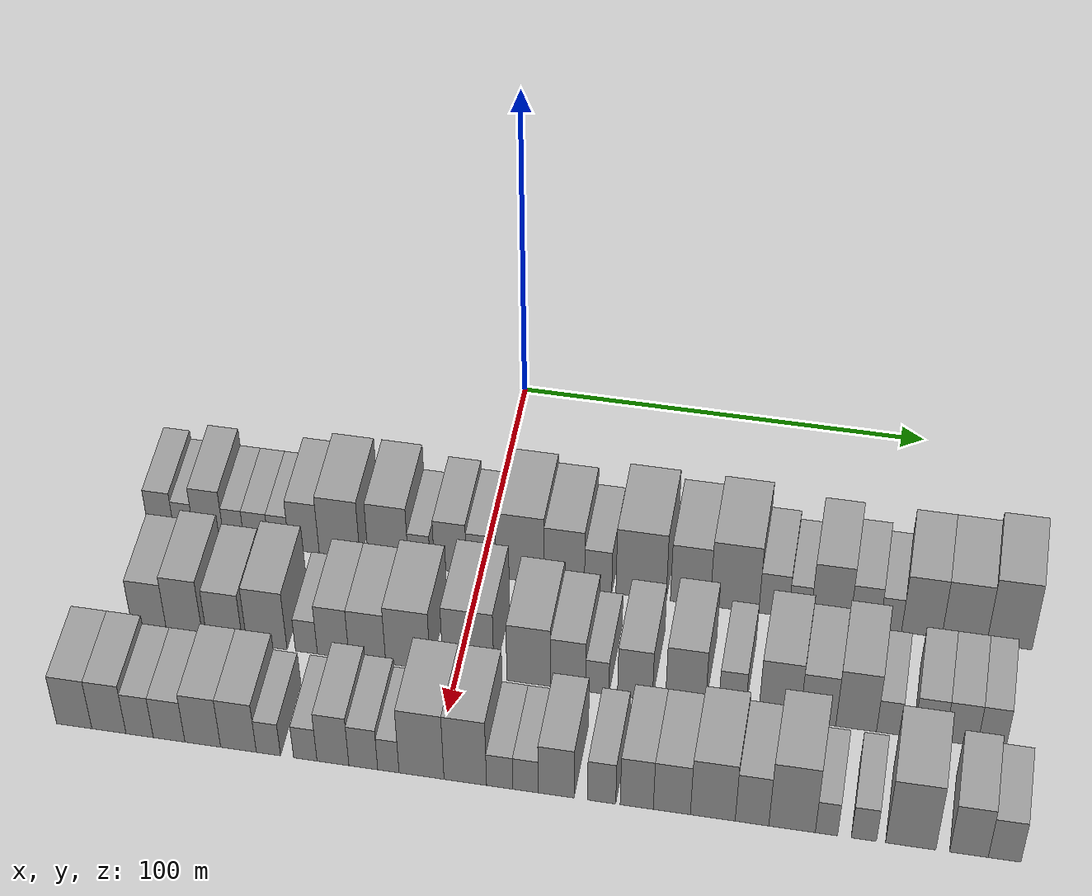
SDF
<sdf version="1.6">
 <world name="default">
  <model name="building_24">
   <static>1</static>
   <pose>50.0000 -77.7692 0 0.000000 0.000000 0.000000</pose>
   <link name="link">
    <pose>0 0 7.50 0 0 0</pose>
    <collision name="collision"><geometry><box><size>20.0000 6.3808 15.0000</size></box></geometry></collision>
    <visual name="visual">
     <cast_shadows>0</cast_shadows>
     <geometry><box><size>20.0000 6.3808 15.0000</size></box></geometry>
     <material>
      <script>
       <uri>model://grey_wall/materials/scripts</uri>
       <uri>model://grey_wall/materials/textures</uri>
       <name>vrc/grey_wall</name>
      </script>
     </material>
    </visual>
   </link>
  </model>
  <model name="building_25">
   <static>1</static>
   <pose>50.0000 -72.1484 0 0.000000 0.000000 0.000000</pose>
   <link name="link">
    <pose>0 0 6.00 0 0 0</pose>
    <collision name="collision"><geometry><box><size>20.0000 4.8608 12.0000</size></box></geometry></collision>
    <visual name="visual">
     <cast_shadows>0</cast_shadows>
     <geometry><box><size>20.0000 4.8608 12.0000</size></box></geometry>
     <material>
      <script>
       <uri>model://grey_wall/materials/scripts</uri>
       <uri>model://grey_wall/materials/textures</uri>
       <name>vrc/grey_wall</name>
      </script>
     </material>
    </visual>
   </link>
  </model>
  <model name="building_26">
   <static>1</static>
   <pose>50.0000 -66.0389 0 0.000000 0.000000 0.000000</pose>
   <link name="link">
    <pose>0 0 9.00 0 0 0</pose>
    <collision name="collision"><geometry><box><size>20.0000 7.3583 18.0000</size></box></geometry></collision>
    <visual name="visual">
     <cast_shadows>0</cast_shadows>
     <geometry><box><size>20.0000 7.3583 18.0000</size></box></geometry>
     <material>
      <script>
       <uri>model://grey_wall/materials/scripts</uri>
       <uri>model://grey_wall/materials/textures</uri>
       <name>vrc/grey_wall</name>
      </script>
     </material>
    </visual>
   </link>
  </model>
  <model name="building_27">
   <static>1</static>
   <pose>50.0000 -59.8651 0 0.000000 0.000000 0.000000</pose>
   <link name="link">
    <pose>0 0 6.00 0 0 0</pose>
    <collision name="collision"><geometry><box><size>20.0000 4.9893 12.0000</size></box></geometry></collision>
    <visual name="visual">
     <cast_shadows>0</cast_shadows>
     <geometry><box><size>20.0000 4.9893 12.0000</size></box></geometry>
     <material>
      <script>
       <uri>model://grey_wall/materials/scripts</uri>
       <uri>model://grey_wall/materials/textures</uri>
       <name>vrc/grey_wall</name>
      </script>
     </material>
    </visual>
   </link>
  </model>
  <model name="building_28">
   <static>1</static>
   <pose>50.0000 -54.3744 0 0.000000 0.000000 0.000000</pose>
   <link name="link">
    <pose>0 0 6.00 0 0 0</pose>
    <collision name="collision"><geometry><box><size>20.0000 5.9921 12.0000</size></box></geometry></collision>
    <visual name="visual">
     <cast_shadows>0</cast_shadows>
     <geometry><box><size>20.0000 5.9921 12.0000</size></box></geometry>
     <material>
      <script>
       <uri>model://grey_wall/materials/scripts</uri>
       <uri>model://grey_wall/materials/textures</uri>
       <name>vrc/grey_wall</name>
      </script>
     </material>
    </visual>
   </link>
  </model>
  <model name="building_29">
   <static>1</static>
   <pose>50.0000 -48.8814 0 0.000000 0.000000 0.000000</pose>
   <link name="link">
    <pose>0 0 6.00 0 0 0</pose>
    <collision name="collision"><geometry><box><size>20.0000 4.9938 12.0000</size></box></geometry></collision>
    <visual name="visual">
     <cast_shadows>0</cast_shadows>
     <geometry><box><size>20.0000 4.9938 12.0000</size></box></geometry>
     <material>
      <script>
       <uri>model://grey_wall/materials/scripts</uri>
       <uri>model://grey_wall/materials/textures</uri>
       <name>vrc/grey_wall</name>
      </script>
     </material>
    </visual>
   </link>
  </model>
  <model name="building_30">
   <static>1</static>
   <pose>50.0000 -42.7141 0 0.000000 0.000000 0.000000</pose>
   <link name="link">
    <pose>0 0 9.00 0 0 0</pose>
    <collision name="collision"><geometry><box><size>20.0000 7.3408 18.0000</size></box></geometry></collision>
    <visual name="visual">
     <cast_shadows>0</cast_shadows>
     <geometry><box><size>20.0000 7.3408 18.0000</size></box></geometry>
     <material>
      <script>
       <uri>model://grey_wall/materials/scripts</uri>
       <uri>model://grey_wall/materials/textures</uri>
       <name>vrc/grey_wall</name>
      </script>
     </material>
    </visual>
   </link>
  </model>
  <model name="building_31">
   <static>1</static>
   <pose>50.0000 -34.0689 0 0.000000 0.000000 0.000000</pose>
   <link name="link">
    <pose>0 0 10.50 0 0 0</pose>
    <collision name="collision"><geometry><box><size>20.0000 9.9496 21.0000</size></box></geometry></collision>
    <visual name="visual">
     <cast_shadows>0</cast_shadows>
     <geometry><box><size>20.0000 9.9496 21.0000</size></box></geometry>
     <material>
      <script>
       <uri>model://grey_wall/materials/scripts</uri>
       <uri>model://grey_wall/materials/textures</uri>
       <name>vrc/grey_wall</name>
      </script>
     </material>
    </visual>
   </link>
  </model>
  <model name="building_32">
   <static>1</static>
   <pose>50.0000 -22.2317 0 0.000000 0.000000 0.000000</pose>
   <link name="link">
    <pose>0 0 10.50 0 0 0</pose>
    <collision name="collision"><geometry><box><size>20.0000 9.7248 21.0000</size></box></geometry></collision>
    <visual name="visual">
     <cast_shadows>0</cast_shadows>
     <geometry><box><size>20.0000 9.7248 21.0000</size></box></geometry>
     <material>
      <script>
       <uri>model://grey_wall/materials/scripts</uri>
       <uri>model://grey_wall/materials/textures</uri>
       <name>vrc/grey_wall</name>
      </script>
     </material>
    </visual>
   </link>
  </model>
  <model name="building_33">
   <static>1</static>
   <pose>50.0000 -14.7225 0 0.000000 0.000000 0.000000</pose>
   <link name="link">
    <pose>0 0 6.00 0 0 0</pose>
    <collision name="collision"><geometry><box><size>20.0000 5.2937 12.0000</size></box></geometry></collision>
    <visual name="visual">
     <cast_shadows>0</cast_shadows>
     <geometry><box><size>20.0000 5.2937 12.0000</size></box></geometry>
     <material>
      <script>
       <uri>model://grey_wall/materials/scripts</uri>
       <uri>model://grey_wall/materials/textures</uri>
       <name>vrc/grey_wall</name>
      </script>
     </material>
    </visual>
   </link>
  </model>
  <model name="building_34">
   <static>1</static>
   <pose>50.0000 -7.1864 0 0.000000 0.000000 0.000000</pose>
   <link name="link">
    <pose>0 0 9.00 0 0 0</pose>
    <collision name="collision"><geometry><box><size>20.0000 7.7785 18.0000</size></box></geometry></collision>
    <visual name="visual">
     <cast_shadows>0</cast_shadows>
     <geometry><box><size>20.0000 7.7785 18.0000</size></box></geometry>
     <material>
      <script>
       <uri>model://grey_wall/materials/scripts</uri>
       <uri>model://grey_wall/materials/textures</uri>
       <name>vrc/grey_wall</name>
      </script>
     </material>
    </visual>
   </link>
  </model>
  <model name="building_35">
   <static>1</static>
   <pose>50.0000 0.2506 0 0.000000 0.000000 0.000000</pose>
   <link name="link">
    <pose>0 0 7.50 0 0 0</pose>
    <collision name="collision"><geometry><box><size>20.0000 7.0955 15.0000</size></box></geometry></collision>
    <visual name="visual">
     <cast_shadows>0</cast_shadows>
     <geometry><box><size>20.0000 7.0955 15.0000</size></box></geometry>
     <material>
      <script>
       <uri>model://grey_wall/materials/scripts</uri>
       <uri>model://grey_wall/materials/textures</uri>
       <name>vrc/grey_wall</name>
      </script>
     </material>
    </visual>
   </link>
  </model>
  <model name="building_36">
   <static>1</static>
   <pose>50.0000 9.5792 0 0.000000 0.000000 0.000000</pose>
   <link name="link">
    <pose>0 0 12.00 0 0 0</pose>
    <collision name="collision"><geometry><box><size>20.0000 11.5617 24.0000</size></box></geometry></collision>
    <visual name="visual">
     <cast_shadows>0</cast_shadows>
     <geometry><box><size>20.0000 11.5617 24.0000</size></box></geometry>
     <material>
      <script>
       <uri>model://grey_wall/materials/scripts</uri>
       <uri>model://grey_wall/materials/textures</uri>
       <name>vrc/grey_wall</name>
      </script>
     </material>
    </visual>
   </link>
  </model>
  <model name="building_37">
   <static>1</static>
   <pose>50.0000 20.1480 0 0.000000 0.000000 0.000000</pose>
   <link name="link">
    <pose>0 0 10.50 0 0 0</pose>
    <collision name="collision"><geometry><box><size>20.0000 9.5758 21.0000</size></box></geometry></collision>
    <visual name="visual">
     <cast_shadows>0</cast_shadows>
     <geometry><box><size>20.0000 9.5758 21.0000</size></box></geometry>
     <material>
      <script>
       <uri>model://grey_wall/materials/scripts</uri>
       <uri>model://grey_wall/materials/textures</uri>
       <name>vrc/grey_wall</name>
      </script>
     </material>
    </visual>
   </link>
  </model>
  <model name="building_38">
   <static>1</static>
   <pose>50.0000 28.1841 0 0.000000 0.000000 0.000000</pose>
   <link name="link">
    <pose>0 0 7.50 0 0 0</pose>
    <collision name="collision"><geometry><box><size>20.0000 6.4964 15.0000</size></box></geometry></collision>
    <visual name="visual">
     <cast_shadows>0</cast_shadows>
     <geometry><box><size>20.0000 6.4964 15.0000</size></box></geometry>
     <material>
      <script>
       <uri>model://grey_wall/materials/scripts</uri>
       <uri>model://grey_wall/materials/textures</uri>
       <name>vrc/grey_wall</name>
      </script>
     </material>
    </visual>
   </link>
  </model>
  <model name="building_39">
   <static>1</static>
   <pose>50.0000 38.3976 0 0.000000 0.000000 0.000000</pose>
   <link name="link">
    <pose>0 0 12.00 0 0 0</pose>
    <collision name="collision"><geometry><box><size>20.0000 11.9307 24.0000</size></box></geometry></collision>
    <visual name="visual">
     <cast_shadows>0</cast_shadows>
     <geometry><box><size>20.0000 11.9307 24.0000</size></box></geometry>
     <material>
      <script>
       <uri>model://grey_wall/materials/scripts</uri>
       <uri>model://grey_wall/materials/textures</uri>
       <name>vrc/grey_wall</name>
      </script>
     </material>
    </visual>
   </link>
  </model>
  <model name="building_40">
   <static>1</static>
   <pose>50.0000 50.0715 0 0.000000 0.000000 0.000000</pose>
   <link name="link">
    <pose>0 0 10.50 0 0 0</pose>
    <collision name="collision"><geometry><box><size>20.0000 9.4170 21.0000</size></box></geometry></collision>
    <visual name="visual">
     <cast_shadows>0</cast_shadows>
     <geometry><box><size>20.0000 9.4170 21.0000</size></box></geometry>
     <material>
      <script>
       <uri>model://grey_wall/materials/scripts</uri>
       <uri>model://grey_wall/materials/textures</uri>
       <name>vrc/grey_wall</name>
      </script>
     </material>
    </visual>
   </link>
  </model>
  <model name="building_41">
   <static>1</static>
   <pose>50.0000 60.5149 0 0.000000 0.000000 0.000000</pose>
   <link name="link">
    <pose>0 0 12.00 0 0 0</pose>
    <collision name="collision"><geometry><box><size>20.0000 11.4699 24.0000</size></box></geometry></collision>
    <visual name="visual">
     <cast_shadows>0</cast_shadows>
     <geometry><box><size>20.0000 11.4699 24.0000</size></box></geometry>
     <material>
      <script>
       <uri>model://grey_wall/materials/scripts</uri>
       <uri>model://grey_wall/materials/textures</uri>
       <name>vrc/grey_wall</name>
      </script>
     </material>
    </visual>
   </link>
  </model>
  <model name="building_42">
   <static>1</static>
   <pose>50.0000 69.7422 0 0.000000 0.000000 0.000000</pose>
   <link name="link">
    <pose>0 0 7.50 0 0 0</pose>
    <collision name="collision"><geometry><box><size>20.0000 6.9846 15.0000</size></box></geometry></collision>
    <visual name="visual">
     <cast_shadows>0</cast_shadows>
     <geometry><box><size>20.0000 6.9846 15.0000</size></box></geometry>
     <material>
      <script>
       <uri>model://grey_wall/materials/scripts</uri>
       <uri>model://grey_wall/materials/textures</uri>
       <name>vrc/grey_wall</name>
      </script>
     </material>
    </visual>
   </link>
  </model>
  <model name="building_43">
   <static>1</static>
   <pose>50.0000 75.8215 0 0.000000 0.000000 0.000000</pose>
   <link name="link">
    <pose>0 0 6.00 0 0 0</pose>
    <collision name="collision"><geometry><box><size>20.0000 5.1740 12.0000</size></box></geometry></collision>
    <visual name="visual">
     <cast_shadows>0</cast_shadows>
     <geometry><box><size>20.0000 5.1740 12.0000</size></box></geometry>
     <material>
      <script>
       <uri>model://grey_wall/materials/scripts</uri>
       <uri>model://grey_wall/materials/textures</uri>
       <name>vrc/grey_wall</name>
      </script>
     </material>
    </visual>
   </link>
  </model>
  <model name="building_44">
   <static>1</static>
   <pose>50.0000 83.0262 0 0.000000 0.000000 0.000000</pose>
   <link name="link">
    <pose>0 0 10.50 0 0 0</pose>
    <collision name="collision"><geometry><box><size>20.0000 9.2354 21.0000</size></box></geometry></collision>
    <visual name="visual">
     <cast_shadows>0</cast_shadows>
     <geometry><box><size>20.0000 9.2354 21.0000</size></box></geometry>
     <material>
      <script>
       <uri>model://grey_wall/materials/scripts</uri>
       <uri>model://grey_wall/materials/textures</uri>
       <name>vrc/grey_wall</name>
      </script>
     </material>
    </visual>
   </link>
  </model>
  <model name="building_45">
   <static>1</static>
   <pose>50.0000 91.1143 0 0.000000 0.000000 0.000000</pose>
   <link name="link">
    <pose>0 0 7.50 0 0 0</pose>
    <collision name="collision"><geometry><box><size>20.0000 6.9408 15.0000</size></box></geometry></collision>
    <visual name="visual">
     <cast_shadows>0</cast_shadows>
     <geometry><box><size>20.0000 6.9408 15.0000</size></box></geometry>
     <material>
      <script>
       <uri>model://grey_wall/materials/scripts</uri>
       <uri>model://grey_wall/materials/textures</uri>
       <name>vrc/grey_wall</name>
      </script>
     </material>
    </visual>
   </link>
  </model>
  <model name="building_46">
   <static>1</static>
   <pose>50.0000 97.1220 0 0.000000 0.000000 0.000000</pose>
   <link name="link">
    <pose>0 0 6.00 0 0 0</pose>
    <collision name="collision"><geometry><box><size>20.0000 5.0745 12.0000</size></box></geometry></collision>
    <visual name="visual">
     <cast_shadows>0</cast_shadows>
     <geometry><box><size>20.0000 5.0745 12.0000</size></box></geometry>
     <material>
      <script>
       <uri>model://grey_wall/materials/scripts</uri>
       <uri>model://grey_wall/materials/textures</uri>
       <name>vrc/grey_wall</name>
      </script>
     </material>
    </visual>
   </link>
  </model>
  <model name="building_47">
   <static>1</static>
   <pose>50.0000 104.3414 0 0.000000 0.000000 0.000000</pose>
   <link name="link">
    <pose>0 0 10.50 0 0 0</pose>
    <collision name="collision"><geometry><box><size>20.0000 9.3645 21.0000</size></box></geometry></collision>
    <visual name="visual">
     <cast_shadows>0</cast_shadows>
     <geometry><box><size>20.0000 9.3645 21.0000</size></box></geometry>
     <material>
      <script>
       <uri>model://grey_wall/materials/scripts</uri>
       <uri>model://grey_wall/materials/textures</uri>
       <name>vrc/grey_wall</name>
      </script>
     </material>
    </visual>
   </link>
  </model>
  <model name="building_48">
   <static>1</static>
   <pose>50.0000 114.2384 0 0.000000 0.000000 0.000000</pose>
   <link name="link">
    <pose>0 0 10.50 0 0 0</pose>
    <collision name="collision"><geometry><box><size>20.0000 10.4295 21.0000</size></box></geometry></collision>
    <visual name="visual">
     <cast_shadows>0</cast_shadows>
     <geometry><box><size>20.0000 10.4295 21.0000</size></box></geometry>
     <material>
      <script>
       <uri>model://grey_wall/materials/scripts</uri>
       <uri>model://grey_wall/materials/textures</uri>
       <name>vrc/grey_wall</name>
      </script>
     </material>
    </visual>
   </link>
  </model>
  <model name="building_49">
   <static>1</static>
   <pose>50.0000 124.6758 0 0.000000 0.000000 0.000000</pose>
   <link name="link">
    <pose>0 0 12.00 0 0 0</pose>
    <collision name="collision"><geometry><box><size>20.0000 10.4453 24.0000</size></box></geometry></collision>
    <visual name="visual">
     <cast_shadows>0</cast_shadows>
     <geometry><box><size>20.0000 10.4453 24.0000</size></box></geometry>
     <material>
      <script>
       <uri>model://grey_wall/materials/scripts</uri>
       <uri>model://grey_wall/materials/textures</uri>
       <name>vrc/grey_wall</name>
      </script>
     </material>
    </visual>
   </link>
  </model>
  <model name="building_106">
   <static>1</static>
   <pose>79.0000 -72.8455 0 0.000000 0.000000 0.000000</pose>
   <link name="link">
    <pose>0 0 9.00 0 0 0</pose>
    <collision name="collision"><geometry><box><size>20.0000 8.3248 18.0000</size></box></geometry></collision>
    <visual name="visual">
     <cast_shadows>0</cast_shadows>
     <geometry><box><size>20.0000 8.3248 18.0000</size></box></geometry>
     <material>
      <script>
       <uri>model://grey_wall/materials/scripts</uri>
       <uri>model://grey_wall/materials/textures</uri>
       <name>vrc/grey_wall</name>
      </script>
     </material>
    </visual>
   </link>
  </model>
  <model name="building_107">
   <static>1</static>
   <pose>79.0000 -64.3880 0 0.000000 0.000000 0.000000</pose>
   <link name="link">
    <pose>0 0 10.50 0 0 0</pose>
    <collision name="collision"><geometry><box><size>20.0000 8.5904 21.0000</size></box></geometry></collision>
    <visual name="visual">
     <cast_shadows>0</cast_shadows>
     <geometry><box><size>20.0000 8.5904 21.0000</size></box></geometry>
     <material>
      <script>
       <uri>model://grey_wall/materials/scripts</uri>
       <uri>model://grey_wall/materials/textures</uri>
       <name>vrc/grey_wall</name>
      </script>
     </material>
    </visual>
   </link>
  </model>
  <model name="building_108">
   <static>1</static>
   <pose>79.0000 -54.8262 0 0.000000 0.000000 0.000000</pose>
   <link name="link">
    <pose>0 0 9.00 0 0 0</pose>
    <collision name="collision"><geometry><box><size>20.0000 8.5331 18.0000</size></box></geometry></collision>
    <visual name="visual">
     <cast_shadows>0</cast_shadows>
     <geometry><box><size>20.0000 8.5331 18.0000</size></box></geometry>
     <material>
      <script>
       <uri>model://grey_wall/materials/scripts</uri>
       <uri>model://grey_wall/materials/textures</uri>
       <name>vrc/grey_wall</name>
      </script>
     </material>
    </visual>
   </link>
  </model>
  <model name="building_109">
   <static>1</static>
   <pose>79.0000 -44.7989 0 0.000000 0.000000 0.000000</pose>
   <link name="link">
    <pose>0 0 10.50 0 0 0</pose>
    <collision name="collision"><geometry><box><size>20.0000 9.5216 21.0000</size></box></geometry></collision>
    <visual name="visual">
     <cast_shadows>0</cast_shadows>
     <geometry><box><size>20.0000 9.5216 21.0000</size></box></geometry>
     <material>
      <script>
       <uri>model://grey_wall/materials/scripts</uri>
       <uri>model://grey_wall/materials/textures</uri>
       <name>vrc/grey_wall</name>
      </script>
     </material>
    </visual>
   </link>
  </model>
  <model name="building_110">
   <static>1</static>
   <pose>79.0000 -35.4423 0 0.000000 0.000000 0.000000</pose>
   <link name="link">
    <pose>0 0 6.00 0 0 0</pose>
    <collision name="collision"><geometry><box><size>20.0000 5.1914 12.0000</size></box></geometry></collision>
    <visual name="visual">
     <cast_shadows>0</cast_shadows>
     <geometry><box><size>20.0000 5.1914 12.0000</size></box></geometry>
     <material>
      <script>
       <uri>model://grey_wall/materials/scripts</uri>
       <uri>model://grey_wall/materials/textures</uri>
       <name>vrc/grey_wall</name>
      </script>
     </material>
    </visual>
   </link>
  </model>
  <model name="building_111">
   <static>1</static>
   <pose>79.0000 -29.1045 0 0.000000 0.000000 0.000000</pose>
   <link name="link">
    <pose>0 0 9.00 0 0 0</pose>
    <collision name="collision"><geometry><box><size>20.0000 7.4842 18.0000</size></box></geometry></collision>
    <visual name="visual">
     <cast_shadows>0</cast_shadows>
     <geometry><box><size>20.0000 7.4842 18.0000</size></box></geometry>
     <material>
      <script>
       <uri>model://grey_wall/materials/scripts</uri>
       <uri>model://grey_wall/materials/textures</uri>
       <name>vrc/grey_wall</name>
      </script>
     </material>
    </visual>
   </link>
  </model>
  <model name="building_112">
   <static>1</static>
   <pose>79.0000 -21.0315 0 0.000000 0.000000 0.000000</pose>
   <link name="link">
    <pose>0 0 9.00 0 0 0</pose>
    <collision name="collision"><geometry><box><size>20.0000 8.6617 18.0000</size></box></geometry></collision>
    <visual name="visual">
     <cast_shadows>0</cast_shadows>
     <geometry><box><size>20.0000 8.6617 18.0000</size></box></geometry>
     <material>
      <script>
       <uri>model://grey_wall/materials/scripts</uri>
       <uri>model://grey_wall/materials/textures</uri>
       <name>vrc/grey_wall</name>
      </script>
     </material>
    </visual>
   </link>
  </model>
  <model name="building_113">
   <static>1</static>
   <pose>79.0000 -11.4626 0 0.000000 0.000000 0.000000</pose>
   <link name="link">
    <pose>0 0 10.50 0 0 0</pose>
    <collision name="collision"><geometry><box><size>20.0000 10.4762 21.0000</size></box></geometry></collision>
    <visual name="visual">
     <cast_shadows>0</cast_shadows>
     <geometry><box><size>20.0000 10.4762 21.0000</size></box></geometry>
     <material>
      <script>
       <uri>model://grey_wall/materials/scripts</uri>
       <uri>model://grey_wall/materials/textures</uri>
       <name>vrc/grey_wall</name>
      </script>
     </material>
    </visual>
   </link>
  </model>
  <model name="building_114">
   <static>1</static>
   <pose>79.0000 2.7333 0 0.000000 0.000000 0.000000</pose>
   <link name="link">
    <pose>0 0 12.00 0 0 0</pose>
    <collision name="collision"><geometry><box><size>20.0000 11.9155 24.0000</size></box></geometry></collision>
    <visual name="visual">
     <cast_shadows>0</cast_shadows>
     <geometry><box><size>20.0000 11.9155 24.0000</size></box></geometry>
     <material>
      <script>
       <uri>model://grey_wall/materials/scripts</uri>
       <uri>model://grey_wall/materials/textures</uri>
       <name>vrc/grey_wall</name>
      </script>
     </material>
    </visual>
   </link>
  </model>
  <model name="building_115">
   <static>1</static>
   <pose>79.0000 16.7274 0 0.000000 0.000000 0.000000</pose>
   <link name="link">
    <pose>0 0 10.50 0 0 0</pose>
    <collision name="collision"><geometry><box><size>20.0000 10.0727 21.0000</size></box></geometry></collision>
    <visual name="visual">
     <cast_shadows>0</cast_shadows>
     <geometry><box><size>20.0000 10.0727 21.0000</size></box></geometry>
     <material>
      <script>
       <uri>model://grey_wall/materials/scripts</uri>
       <uri>model://grey_wall/materials/textures</uri>
       <name>vrc/grey_wall</name>
      </script>
     </material>
    </visual>
   </link>
  </model>
  <model name="building_116">
   <static>1</static>
   <pose>79.0000 25.8752 0 0.000000 0.000000 0.000000</pose>
   <link name="link">
    <pose>0 0 9.00 0 0 0</pose>
    <collision name="collision"><geometry><box><size>20.0000 8.2229 18.0000</size></box></geometry></collision>
    <visual name="visual">
     <cast_shadows>0</cast_shadows>
     <geometry><box><size>20.0000 8.2229 18.0000</size></box></geometry>
     <material>
      <script>
       <uri>model://grey_wall/materials/scripts</uri>
       <uri>model://grey_wall/materials/textures</uri>
       <name>vrc/grey_wall</name>
      </script>
     </material>
    </visual>
   </link>
  </model>
  <model name="building_117">
   <static>1</static>
   <pose>79.0000 32.6592 0 0.000000 0.000000 0.000000</pose>
   <link name="link">
    <pose>0 0 6.00 0 0 0</pose>
    <collision name="collision"><geometry><box><size>20.0000 5.3452 12.0000</size></box></geometry></collision>
    <visual name="visual">
     <cast_shadows>0</cast_shadows>
     <geometry><box><size>20.0000 5.3452 12.0000</size></box></geometry>
     <material>
      <script>
       <uri>model://grey_wall/materials/scripts</uri>
       <uri>model://grey_wall/materials/textures</uri>
       <name>vrc/grey_wall</name>
      </script>
     </material>
    </visual>
   </link>
  </model>
  <model name="building_118">
   <static>1</static>
   <pose>79.0000 41.3565 0 0.000000 0.000000 0.000000</pose>
   <link name="link">
    <pose>0 0 9.00 0 0 0</pose>
    <collision name="collision"><geometry><box><size>20.0000 8.0492 18.0000</size></box></geometry></collision>
    <visual name="visual">
     <cast_shadows>0</cast_shadows>
     <geometry><box><size>20.0000 8.0492 18.0000</size></box></geometry>
     <material>
      <script>
       <uri>model://grey_wall/materials/scripts</uri>
       <uri>model://grey_wall/materials/textures</uri>
       <name>vrc/grey_wall</name>
      </script>
     </material>
    </visual>
   </link>
  </model>
  <model name="building_119">
   <static>1</static>
   <pose>79.0000 52.9645 0 0.000000 0.000000 0.000000</pose>
   <link name="link">
    <pose>0 0 10.50 0 0 0</pose>
    <collision name="collision"><geometry><box><size>20.0000 9.1668 21.0000</size></box></geometry></collision>
    <visual name="visual">
     <cast_shadows>0</cast_shadows>
     <geometry><box><size>20.0000 9.1668 21.0000</size></box></geometry>
     <material>
      <script>
       <uri>model://grey_wall/materials/scripts</uri>
       <uri>model://grey_wall/materials/textures</uri>
       <name>vrc/grey_wall</name>
      </script>
     </material>
    </visual>
   </link>
  </model>
  <model name="building_120">
   <static>1</static>
   <pose>79.0000 63.6351 0 0.000000 0.000000 0.000000</pose>
   <link name="link">
    <pose>0 0 7.50 0 0 0</pose>
    <collision name="collision"><geometry><box><size>20.0000 6.1743 15.0000</size></box></geometry></collision>
    <visual name="visual">
     <cast_shadows>0</cast_shadows>
     <geometry><box><size>20.0000 6.1743 15.0000</size></box></geometry>
     <material>
      <script>
       <uri>model://grey_wall/materials/scripts</uri>
       <uri>model://grey_wall/materials/textures</uri>
       <name>vrc/grey_wall</name>
      </script>
     </material>
    </visual>
   </link>
  </model>
  <model name="building_121">
   <static>1</static>
   <pose>79.0000 74.4459 0 0.000000 0.000000 0.000000</pose>
   <link name="link">
    <pose>0 0 10.50 0 0 0</pose>
    <collision name="collision"><geometry><box><size>20.0000 9.4473 21.0000</size></box></geometry></collision>
    <visual name="visual">
     <cast_shadows>0</cast_shadows>
     <geometry><box><size>20.0000 9.4473 21.0000</size></box></geometry>
     <material>
      <script>
       <uri>model://grey_wall/materials/scripts</uri>
       <uri>model://grey_wall/materials/textures</uri>
       <name>vrc/grey_wall</name>
      </script>
     </material>
    </visual>
   </link>
  </model>
  <model name="building_122">
   <static>1</static>
   <pose>79.0000 83.2457 0 0.000000 0.000000 0.000000</pose>
   <link name="link">
    <pose>0 0 9.00 0 0 0</pose>
    <collision name="collision"><geometry><box><size>20.0000 8.1524 18.0000</size></box></geometry></collision>
    <visual name="visual">
     <cast_shadows>0</cast_shadows>
     <geometry><box><size>20.0000 8.1524 18.0000</size></box></geometry>
     <material>
      <script>
       <uri>model://grey_wall/materials/scripts</uri>
       <uri>model://grey_wall/materials/textures</uri>
       <name>vrc/grey_wall</name>
      </script>
     </material>
    </visual>
   </link>
  </model>
  <model name="building_123">
   <static>1</static>
   <pose>79.0000 91.9345 0 0.000000 0.000000 0.000000</pose>
   <link name="link">
    <pose>0 0 10.50 0 0 0</pose>
    <collision name="collision"><geometry><box><size>20.0000 9.2253 21.0000</size></box></geometry></collision>
    <visual name="visual">
     <cast_shadows>0</cast_shadows>
     <geometry><box><size>20.0000 9.2253 21.0000</size></box></geometry>
     <material>
      <script>
       <uri>model://grey_wall/materials/scripts</uri>
       <uri>model://grey_wall/materials/textures</uri>
       <name>vrc/grey_wall</name>
      </script>
     </material>
    </visual>
   </link>
  </model>
  <model name="building_124">
   <static>1</static>
   <pose>79.0000 99.2142 0 0.000000 0.000000 0.000000</pose>
   <link name="link">
    <pose>0 0 6.00 0 0 0</pose>
    <collision name="collision"><geometry><box><size>20.0000 5.3341 12.0000</size></box></geometry></collision>
    <visual name="visual">
     <cast_shadows>0</cast_shadows>
     <geometry><box><size>20.0000 5.3341 12.0000</size></box></geometry>
     <material>
      <script>
       <uri>model://grey_wall/materials/scripts</uri>
       <uri>model://grey_wall/materials/textures</uri>
       <name>vrc/grey_wall</name>
      </script>
     </material>
    </visual>
   </link>
  </model>
  <model name="building_125">
   <static>1</static>
   <pose>79.0000 108.4288 0 0.000000 0.000000 0.000000</pose>
   <link name="link">
    <pose>0 0 7.50 0 0 0</pose>
    <collision name="collision"><geometry><box><size>20.0000 7.0950 15.0000</size></box></geometry></collision>
    <visual name="visual">
     <cast_shadows>0</cast_shadows>
     <geometry><box><size>20.0000 7.0950 15.0000</size></box></geometry>
     <material>
      <script>
       <uri>model://grey_wall/materials/scripts</uri>
       <uri>model://grey_wall/materials/textures</uri>
       <name>vrc/grey_wall</name>
      </script>
     </material>
    </visual>
   </link>
  </model>
  <model name="building_126">
   <static>1</static>
   <pose>79.0000 115.6472 0 0.000000 0.000000 0.000000</pose>
   <link name="link">
    <pose>0 0 7.50 0 0 0</pose>
    <collision name="collision"><geometry><box><size>20.0000 7.3418 15.0000</size></box></geometry></collision>
    <visual name="visual">
     <cast_shadows>0</cast_shadows>
     <geometry><box><size>20.0000 7.3418 15.0000</size></box></geometry>
     <material>
      <script>
       <uri>model://grey_wall/materials/scripts</uri>
       <uri>model://grey_wall/materials/textures</uri>
       <name>vrc/grey_wall</name>
      </script>
     </material>
    </visual>
   </link>
  </model>
  <model name="building_127">
   <static>1</static>
   <pose>79.0000 122.4901 0 0.000000 0.000000 0.000000</pose>
   <link name="link">
    <pose>0 0 7.50 0 0 0</pose>
    <collision name="collision"><geometry><box><size>20.0000 6.3440 15.0000</size></box></geometry></collision>
    <visual name="visual">
     <cast_shadows>0</cast_shadows>
     <geometry><box><size>20.0000 6.3440 15.0000</size></box></geometry>
     <material>
      <script>
       <uri>model://grey_wall/materials/scripts</uri>
       <uri>model://grey_wall/materials/textures</uri>
       <name>vrc/grey_wall</name>
      </script>
     </material>
    </visual>
   </link>
  </model>
  <model name="building_175">
   <static>1</static>
   <pose>108.0000 -82.5727 0 0.000000 0.000000 0.000000</pose>
   <link name="link">
    <pose>0 0 9.00 0 0 0</pose>
    <collision name="collision"><geometry><box><size>20.0000 8.2620 18.0000</size></box></geometry></collision>
    <visual name="visual">
     <cast_shadows>0</cast_shadows>
     <geometry><box><size>20.0000 8.2620 18.0000</size></box></geometry>
     <material>
      <script>
       <uri>model://grey_wall/materials/scripts</uri>
       <uri>model://grey_wall/materials/textures</uri>
       <name>vrc/grey_wall</name>
      </script>
     </material>
    </visual>
   </link>
  </model>
  <model name="building_176">
   <static>1</static>
   <pose>108.0000 -74.4552 0 0.000000 0.000000 0.000000</pose>
   <link name="link">
    <pose>0 0 9.00 0 0 0</pose>
    <collision name="collision"><geometry><box><size>20.0000 7.9729 18.0000</size></box></geometry></collision>
    <visual name="visual">
     <cast_shadows>0</cast_shadows>
     <geometry><box><size>20.0000 7.9729 18.0000</size></box></geometry>
     <material>
      <script>
       <uri>model://grey_wall/materials/scripts</uri>
       <uri>model://grey_wall/materials/textures</uri>
       <name>vrc/grey_wall</name>
      </script>
     </material>
    </visual>
   </link>
  </model>
  <model name="building_177">
   <static>1</static>
   <pose>108.0000 -67.2898 0 0.000000 0.000000 0.000000</pose>
   <link name="link">
    <pose>0 0 7.50 0 0 0</pose>
    <collision name="collision"><geometry><box><size>20.0000 6.3580 15.0000</size></box></geometry></collision>
    <visual name="visual">
     <cast_shadows>0</cast_shadows>
     <geometry><box><size>20.0000 6.3580 15.0000</size></box></geometry>
     <material>
      <script>
       <uri>model://grey_wall/materials/scripts</uri>
       <uri>model://grey_wall/materials/textures</uri>
       <name>vrc/grey_wall</name>
      </script>
     </material>
    </visual>
   </link>
  </model>
  <model name="building_178">
   <static>1</static>
   <pose>108.0000 -60.4431 0 0.000000 0.000000 0.000000</pose>
   <link name="link">
    <pose>0 0 7.50 0 0 0</pose>
    <collision name="collision"><geometry><box><size>20.0000 7.3355 15.0000</size></box></geometry></collision>
    <visual name="visual">
     <cast_shadows>0</cast_shadows>
     <geometry><box><size>20.0000 7.3355 15.0000</size></box></geometry>
     <material>
      <script>
       <uri>model://grey_wall/materials/scripts</uri>
       <uri>model://grey_wall/materials/textures</uri>
       <name>vrc/grey_wall</name>
      </script>
     </material>
    </visual>
   </link>
  </model>
  <model name="building_179">
   <static>1</static>
   <pose>108.0000 -52.6331 0 0.000000 0.000000 0.000000</pose>
   <link name="link">
    <pose>0 0 9.00 0 0 0</pose>
    <collision name="collision"><geometry><box><size>20.0000 8.2844 18.0000</size></box></geometry></collision>
    <visual name="visual">
     <cast_shadows>0</cast_shadows>
     <geometry><box><size>20.0000 8.2844 18.0000</size></box></geometry>
     <material>
      <script>
       <uri>model://grey_wall/materials/scripts</uri>
       <uri>model://grey_wall/materials/textures</uri>
       <name>vrc/grey_wall</name>
      </script>
     </material>
    </visual>
   </link>
  </model>
  <model name="building_180">
   <static>1</static>
   <pose>108.0000 -44.3655 0 0.000000 0.000000 0.000000</pose>
   <link name="link">
    <pose>0 0 9.00 0 0 0</pose>
    <collision name="collision"><geometry><box><size>20.0000 8.2508 18.0000</size></box></geometry></collision>
    <visual name="visual">
     <cast_shadows>0</cast_shadows>
     <geometry><box><size>20.0000 8.2508 18.0000</size></box></geometry>
     <material>
      <script>
       <uri>model://grey_wall/materials/scripts</uri>
       <uri>model://grey_wall/materials/textures</uri>
       <name>vrc/grey_wall</name>
      </script>
     </material>
    </visual>
   </link>
  </model>
  <model name="building_181">
   <static>1</static>
   <pose>108.0000 -37.4521 0 0.000000 0.000000 0.000000</pose>
   <link name="link">
    <pose>0 0 6.00 0 0 0</pose>
    <collision name="collision"><geometry><box><size>20.0000 5.5760 12.0000</size></box></geometry></collision>
    <visual name="visual">
     <cast_shadows>0</cast_shadows>
     <geometry><box><size>20.0000 5.5760 12.0000</size></box></geometry>
     <material>
      <script>
       <uri>model://grey_wall/materials/scripts</uri>
       <uri>model://grey_wall/materials/textures</uri>
       <name>vrc/grey_wall</name>
      </script>
     </material>
    </visual>
   </link>
  </model>
  <model name="building_182">
   <static>1</static>
   <pose>108.0000 -28.9753 0 0.000000 0.000000 0.000000</pose>
   <link name="link">
    <pose>0 0 6.00 0 0 0</pose>
    <collision name="collision"><geometry><box><size>20.0000 5.3776 12.0000</size></box></geometry></collision>
    <visual name="visual">
     <cast_shadows>0</cast_shadows>
     <geometry><box><size>20.0000 5.3776 12.0000</size></box></geometry>
     <material>
      <script>
       <uri>model://grey_wall/materials/scripts</uri>
       <uri>model://grey_wall/materials/textures</uri>
       <name>vrc/grey_wall</name>
      </script>
     </material>
    </visual>
   </link>
  </model>
  <model name="building_183">
   <static>1</static>
   <pose>108.0000 -22.6251 0 0.000000 0.000000 0.000000</pose>
   <link name="link">
    <pose>0 0 9.00 0 0 0</pose>
    <collision name="collision"><geometry><box><size>20.0000 7.3228 18.0000</size></box></geometry></collision>
    <visual name="visual">
     <cast_shadows>0</cast_shadows>
     <geometry><box><size>20.0000 7.3228 18.0000</size></box></geometry>
     <material>
      <script>
       <uri>model://grey_wall/materials/scripts</uri>
       <uri>model://grey_wall/materials/textures</uri>
       <name>vrc/grey_wall</name>
      </script>
     </material>
    </visual>
   </link>
  </model>
  <model name="building_184">
   <static>1</static>
   <pose>108.0000 -15.6728 0 0.000000 0.000000 0.000000</pose>
   <link name="link">
    <pose>0 0 7.50 0 0 0</pose>
    <collision name="collision"><geometry><box><size>20.0000 6.5817 15.0000</size></box></geometry></collision>
    <visual name="visual">
     <cast_shadows>0</cast_shadows>
     <geometry><box><size>20.0000 6.5817 15.0000</size></box></geometry>
     <material>
      <script>
       <uri>model://grey_wall/materials/scripts</uri>
       <uri>model://grey_wall/materials/textures</uri>
       <name>vrc/grey_wall</name>
      </script>
     </material>
    </visual>
   </link>
  </model>
  <model name="building_185">
   <static>1</static>
   <pose>108.0000 -9.9448 0 0.000000 0.000000 0.000000</pose>
   <link name="link">
    <pose>0 0 6.00 0 0 0</pose>
    <collision name="collision"><geometry><box><size>20.0000 4.8745 12.0000</size></box></geometry></collision>
    <visual name="visual">
     <cast_shadows>0</cast_shadows>
     <geometry><box><size>20.0000 4.8745 12.0000</size></box></geometry>
     <material>
      <script>
       <uri>model://grey_wall/materials/scripts</uri>
       <uri>model://grey_wall/materials/textures</uri>
       <name>vrc/grey_wall</name>
      </script>
     </material>
    </visual>
   </link>
  </model>
  <model name="building_186">
   <static>1</static>
   <pose>108.0000 -2.3931 0 0.000000 0.000000 0.000000</pose>
   <link name="link">
    <pose>0 0 12.00 0 0 0</pose>
    <collision name="collision"><geometry><box><size>20.0000 10.2288 24.0000</size></box></geometry></collision>
    <visual name="visual">
     <cast_shadows>0</cast_shadows>
     <geometry><box><size>20.0000 10.2288 24.0000</size></box></geometry>
     <material>
      <script>
       <uri>model://grey_wall/materials/scripts</uri>
       <uri>model://grey_wall/materials/textures</uri>
       <name>vrc/grey_wall</name>
      </script>
     </material>
    </visual>
   </link>
  </model>
  <model name="building_187">
   <static>1</static>
   <pose>108.0000 7.5521 0 0.000000 0.000000 0.000000</pose>
   <link name="link">
    <pose>0 0 12.00 0 0 0</pose>
    <collision name="collision"><geometry><box><size>20.0000 9.6616 24.0000</size></box></geometry></collision>
    <visual name="visual">
     <cast_shadows>0</cast_shadows>
     <geometry><box><size>20.0000 9.6616 24.0000</size></box></geometry>
     <material>
      <script>
       <uri>model://grey_wall/materials/scripts</uri>
       <uri>model://grey_wall/materials/textures</uri>
       <name>vrc/grey_wall</name>
      </script>
     </material>
    </visual>
   </link>
  </model>
  <model name="building_188">
   <static>1</static>
   <pose>108.0000 15.3518 0 0.000000 0.000000 0.000000</pose>
   <link name="link">
    <pose>0 0 6.00 0 0 0</pose>
    <collision name="collision"><geometry><box><size>20.0000 5.9379 12.0000</size></box></geometry></collision>
    <visual name="visual">
     <cast_shadows>0</cast_shadows>
     <geometry><box><size>20.0000 5.9379 12.0000</size></box></geometry>
     <material>
      <script>
       <uri>model://grey_wall/materials/scripts</uri>
       <uri>model://grey_wall/materials/textures</uri>
       <name>vrc/grey_wall</name>
      </script>
     </material>
    </visual>
   </link>
  </model>
  <model name="building_189">
   <static>1</static>
   <pose>108.0000 21.1724 0 0.000000 0.000000 0.000000</pose>
   <link name="link">
    <pose>0 0 6.00 0 0 0</pose>
    <collision name="collision"><geometry><box><size>20.0000 5.7033 12.0000</size></box></geometry></collision>
    <visual name="visual">
     <cast_shadows>0</cast_shadows>
     <geometry><box><size>20.0000 5.7033 12.0000</size></box></geometry>
     <material>
      <script>
       <uri>model://grey_wall/materials/scripts</uri>
       <uri>model://grey_wall/materials/textures</uri>
       <name>vrc/grey_wall</name>
      </script>
     </material>
    </visual>
   </link>
  </model>
  <model name="building_190">
   <static>1</static>
   <pose>108.0000 28.0757 0 0.000000 0.000000 0.000000</pose>
   <link name="link">
    <pose>0 0 9.00 0 0 0</pose>
    <collision name="collision"><geometry><box><size>20.0000 8.1032 18.0000</size></box></geometry></collision>
    <visual name="visual">
     <cast_shadows>0</cast_shadows>
     <geometry><box><size>20.0000 8.1032 18.0000</size></box></geometry>
     <material>
      <script>
       <uri>model://grey_wall/materials/scripts</uri>
       <uri>model://grey_wall/materials/textures</uri>
       <name>vrc/grey_wall</name>
      </script>
     </material>
    </visual>
   </link>
  </model>
  <model name="building_191">
   <static>1</static>
   <pose>108.0000 38.2948 0 0.000000 0.000000 0.000000</pose>
   <link name="link">
    <pose>0 0 7.50 0 0 0</pose>
    <collision name="collision"><geometry><box><size>20.0000 6.3350 15.0000</size></box></geometry></collision>
    <visual name="visual">
     <cast_shadows>0</cast_shadows>
     <geometry><box><size>20.0000 6.3350 15.0000</size></box></geometry>
     <material>
      <script>
       <uri>model://grey_wall/materials/scripts</uri>
       <uri>model://grey_wall/materials/textures</uri>
       <name>vrc/grey_wall</name>
      </script>
     </material>
    </visual>
   </link>
  </model>
  <model name="building_192">
   <static>1</static>
   <pose>108.0000 46.1655 0 0.000000 0.000000 0.000000</pose>
   <link name="link">
    <pose>0 0 9.00 0 0 0</pose>
    <collision name="collision"><geometry><box><size>20.0000 7.4064 18.0000</size></box></geometry></collision>
    <visual name="visual">
     <cast_shadows>0</cast_shadows>
     <geometry><box><size>20.0000 7.4064 18.0000</size></box></geometry>
     <material>
      <script>
       <uri>model://grey_wall/materials/scripts</uri>
       <uri>model://grey_wall/materials/textures</uri>
       <name>vrc/grey_wall</name>
      </script>
     </material>
    </visual>
   </link>
  </model>
  <model name="building_193">
   <static>1</static>
   <pose>108.0000 54.0045 0 0.000000 0.000000 0.000000</pose>
   <link name="link">
    <pose>0 0 9.00 0 0 0</pose>
    <collision name="collision"><geometry><box><size>20.0000 8.2718 18.0000</size></box></geometry></collision>
    <visual name="visual">
     <cast_shadows>0</cast_shadows>
     <geometry><box><size>20.0000 8.2718 18.0000</size></box></geometry>
     <material>
      <script>
       <uri>model://grey_wall/materials/scripts</uri>
       <uri>model://grey_wall/materials/textures</uri>
       <name>vrc/grey_wall</name>
      </script>
     </material>
    </visual>
   </link>
  </model>
  <model name="building_194">
   <static>1</static>
   <pose>108.0000 63.1205 0 0.000000 0.000000 0.000000</pose>
   <link name="link">
    <pose>0 0 10.50 0 0 0</pose>
    <collision name="collision"><geometry><box><size>20.0000 9.9602 21.0000</size></box></geometry></collision>
    <visual name="visual">
     <cast_shadows>0</cast_shadows>
     <geometry><box><size>20.0000 9.9602 21.0000</size></box></geometry>
     <material>
      <script>
       <uri>model://grey_wall/materials/scripts</uri>
       <uri>model://grey_wall/materials/textures</uri>
       <name>vrc/grey_wall</name>
      </script>
     </material>
    </visual>
   </link>
  </model>
  <model name="building_195">
   <static>1</static>
   <pose>108.0000 71.8238 0 0.000000 0.000000 0.000000</pose>
   <link name="link">
    <pose>0 0 9.00 0 0 0</pose>
    <collision name="collision"><geometry><box><size>20.0000 7.4462 18.0000</size></box></geometry></collision>
    <visual name="visual">
     <cast_shadows>0</cast_shadows>
     <geometry><box><size>20.0000 7.4462 18.0000</size></box></geometry>
     <material>
      <script>
       <uri>model://grey_wall/materials/scripts</uri>
       <uri>model://grey_wall/materials/textures</uri>
       <name>vrc/grey_wall</name>
      </script>
     </material>
    </visual>
   </link>
  </model>
  <model name="building_196">
   <static>1</static>
   <pose>108.0000 80.6875 0 0.000000 0.000000 0.000000</pose>
   <link name="link">
    <pose>0 0 12.00 0 0 0</pose>
    <collision name="collision"><geometry><box><size>20.0000 10.2812 24.0000</size></box></geometry></collision>
    <visual name="visual">
     <cast_shadows>0</cast_shadows>
     <geometry><box><size>20.0000 10.2812 24.0000</size></box></geometry>
     <material>
      <script>
       <uri>model://grey_wall/materials/scripts</uri>
       <uri>model://grey_wall/materials/textures</uri>
       <name>vrc/grey_wall</name>
      </script>
     </material>
    </visual>
   </link>
  </model>
  <model name="building_197">
   <static>1</static>
   <pose>108.0000 88.2899 0 0.000000 0.000000 0.000000</pose>
   <link name="link">
    <pose>0 0 6.00 0 0 0</pose>
    <collision name="collision"><geometry><box><size>20.0000 4.9237 12.0000</size></box></geometry></collision>
    <visual name="visual">
     <cast_shadows>0</cast_shadows>
     <geometry><box><size>20.0000 4.9237 12.0000</size></box></geometry>
     <material>
      <script>
       <uri>model://grey_wall/materials/scripts</uri>
       <uri>model://grey_wall/materials/textures</uri>
       <name>vrc/grey_wall</name>
      </script>
     </material>
    </visual>
   </link>
  </model>
  <model name="building_198">
   <static>1</static>
   <pose>108.0000 96.5234 0 0.000000 0.000000 0.000000</pose>
   <link name="link">
    <pose>0 0 6.00 0 0 0</pose>
    <collision name="collision"><geometry><box><size>20.0000 5.5434 12.0000</size></box></geometry></collision>
    <visual name="visual">
     <cast_shadows>0</cast_shadows>
     <geometry><box><size>20.0000 5.5434 12.0000</size></box></geometry>
     <material>
      <script>
       <uri>model://grey_wall/materials/scripts</uri>
       <uri>model://grey_wall/materials/textures</uri>
       <name>vrc/grey_wall</name>
      </script>
     </material>
    </visual>
   </link>
  </model>
  <model name="building_199">
   <static>1</static>
   <pose>108.0000 106.7974 0 0.000000 0.000000 0.000000</pose>
   <link name="link">
    <pose>0 0 12.00 0 0 0</pose>
    <collision name="collision"><geometry><box><size>20.0000 11.0045 24.0000</size></box></geometry></collision>
    <visual name="visual">
     <cast_shadows>0</cast_shadows>
     <geometry><box><size>20.0000 11.0045 24.0000</size></box></geometry>
     <material>
      <script>
       <uri>model://grey_wall/materials/scripts</uri>
       <uri>model://grey_wall/materials/textures</uri>
       <name>vrc/grey_wall</name>
      </script>
     </material>
    </visual>
   </link>
  </model>
  <model name="building_200">
   <static>1</static>
   <pose>108.0000 119.5145 0 0.000000 0.000000 0.000000</pose>
   <link name="link">
    <pose>0 0 9.00 0 0 0</pose>
    <collision name="collision"><geometry><box><size>20.0000 8.4298 18.0000</size></box></geometry></collision>
    <visual name="visual">
     <cast_shadows>0</cast_shadows>
     <geometry><box><size>20.0000 8.4298 18.0000</size></box></geometry>
     <material>
      <script>
       <uri>model://grey_wall/materials/scripts</uri>
       <uri>model://grey_wall/materials/textures</uri>
       <name>vrc/grey_wall</name>
      </script>
     </material>
    </visual>
   </link>
  </model>
  <model name="building_201">
   <static>1</static>
   <pose>108.0000 127.2751 0 0.000000 0.000000 0.000000</pose>
   <link name="link">
    <pose>0 0 7.50 0 0 0</pose>
    <collision name="collision"><geometry><box><size>20.0000 7.0914 15.0000</size></box></geometry></collision>
    <visual name="visual">
     <cast_shadows>0</cast_shadows>
     <geometry><box><size>20.0000 7.0914 15.0000</size></box></geometry>
     <material>
      <script>
       <uri>model://grey_wall/materials/scripts</uri>
       <uri>model://grey_wall/materials/textures</uri>
       <name>vrc/grey_wall</name>
      </script>
     </material>
    </visual>
   </link>
  </model>
 </world>
</sdf>
